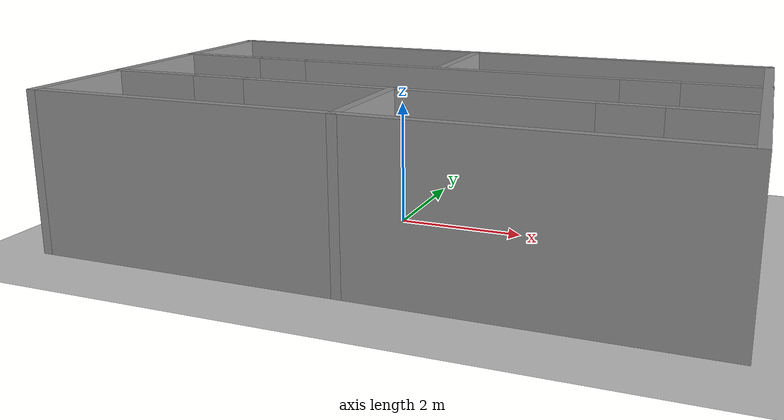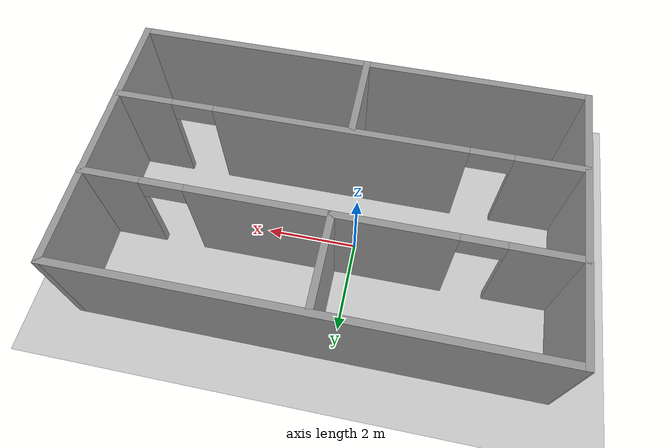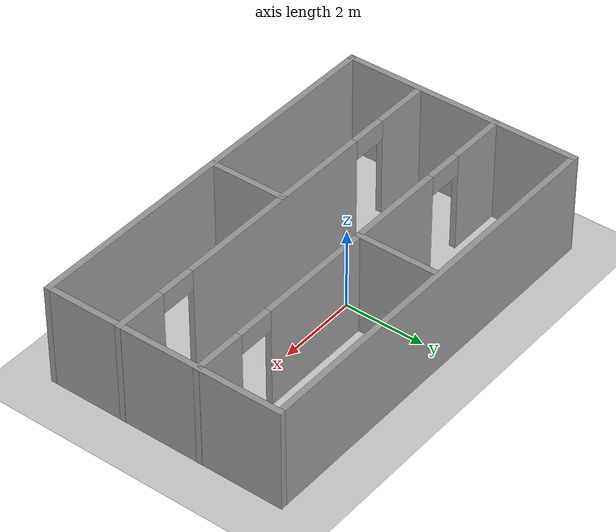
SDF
<sdf version="1.6">
 <world name="default">
  <light name="sun" type="directional">
   <pose>0 0 10 0 -0 0</pose>
   <diffuse>0.8 0.8 0.8 1</diffuse>
   <specular>0.2 0.2 0.2 1</specular>
   <attenuation>
    <range>1000</range>
    <constant>0.9</constant>
    <linear>0.01</linear>
    <quadratic>0.001</quadratic>
   </attenuation>
   <direction>-0.5 0.1 -0.9</direction>
  </light>
  <model name="ground_plane">
   <static>1</static>
   <link name="link">
    <collision name="collision">
     <geometry><plane><normal>0 0 1</normal><size>100 100</size></plane></geometry>
     <surface><friction><ode><mu>100</mu><mu2>50</mu2></ode></friction></surface>
    </collision>
    <visual name="visual">
     <cast_shadows>0</cast_shadows>
     <geometry><plane><normal>0 0 1</normal><size>100 100</size></plane></geometry>
     <material>
      <script><uri>file://media/materials/scripts/gazebo.material</uri><name>Gazebo/Grey</name></script>
     </material>
    </visual>
   </link>
  </model>
  <gravity>0 0 -9.8</gravity>
  <magnetic_field>6e-06 2.3e-05 -4.2e-05</magnetic_field>
  <atmosphere type="adiabatic"/>
  <physics name="default_physics" default="0" type="ode">
   <max_step_size>0.001</max_step_size>
   <real_time_factor>1</real_time_factor>
   <real_time_update_rate>1000</real_time_update_rate>
  </physics>
  <scene><ambient>0.4 0.4 0.4 1</ambient><background>0.7 0.7 0.7 1</background><shadows>1</shadows></scene>
  <audio><device>default</device></audio>
  <spherical_coordinates>
   <surface_model>EARTH_WGS84</surface_model>
   <latitude_deg>0</latitude_deg>
   <longitude_deg>0</longitude_deg>
   <elevation>0</elevation>
   <heading_deg>0</heading_deg>
  </spherical_coordinates>
  <model name="Map1">
   <pose>0.544278 -0.310408 0 0 -0 0</pose>
   <link name="Wall_13">
    <pose>0.015929 0.929443 0 0 -0 0</pose>
    <visual name="Wall_13_Visual_0">
     <pose>-4.2505 0 1.25 0 -0 0</pose>
     <geometry><box><size>1.49901 0.15 2.5</size></box></geometry>
     <material>
      <script><uri>file://media/materials/scripts/gazebo.material</uri><name>Gazebo/Grey</name></script>
      <ambient>1 1 1 1</ambient>
     </material>
    </visual>
    <collision name="Wall_13_Collision_0">
     <geometry><box><size>1.49901 0.15 2.5</size></box></geometry>
     <pose>-4.2505 0 1.25 0 -0 0</pose>
    </collision>
    <visual name="Wall_13_Visual_1">
     <pose>0.097219 0 1.25 0 -0 0</pose>
     <geometry><box><size>5.39642 0.15 2.5</size></box></geometry>
     <material>
      <script><uri>file://media/materials/scripts/gazebo.material</uri><name>Gazebo/Grey</name></script>
      <ambient>1 1 1 1</ambient>
     </material>
    </visual>
    <collision name="Wall_13_Collision_1">
     <geometry><box><size>5.39642 0.15 2.5</size></box></geometry>
     <pose>0.097219 0 1.25 0 -0 0</pose>
    </collision>
    <visual name="Wall_13_Visual_2">
     <pose>4.34771 0 1.25 0 -0 0</pose>
     <geometry><box><size>1.30457 0.15 2.5</size></box></geometry>
     <material>
      <script><uri>file://media/materials/scripts/gazebo.material</uri><name>Gazebo/Grey</name></script>
      <ambient>1 1 1 1</ambient>
     </material>
    </visual>
    <collision name="Wall_13_Collision_2">
     <geometry><box><size>1.30457 0.15 2.5</size></box></geometry>
     <pose>4.34771 0 1.25 0 -0 0</pose>
    </collision>
    <visual name="Wall_13_Visual_3">
     <pose>-3.05099 0 2.25 0 -0 0</pose>
     <geometry><box><size>0.9 0.15 0.5</size></box></geometry>
     <material>
      <script><uri>file://media/materials/scripts/gazebo.material</uri><name>Gazebo/Grey</name></script>
      <ambient>1 1 1 1</ambient>
     </material>
    </visual>
    <collision name="Wall_13_Collision_3">
     <geometry><box><size>0.9 0.15 0.5</size></box></geometry>
     <pose>-3.05099 0 2.25 0 -0 0</pose>
    </collision>
    <visual name="Wall_13_Visual_4">
     <pose>3.24543 0 2.25 0 -0 0</pose>
     <geometry><box><size>0.9 0.15 0.5</size></box></geometry>
     <material>
      <script><uri>file://media/materials/scripts/gazebo.material</uri><name>Gazebo/Grey</name></script>
      <ambient>1 1 1 1</ambient>
     </material>
    </visual>
    <collision name="Wall_13_Collision_4">
     <geometry><box><size>0.9 0.15 0.5</size></box></geometry>
     <pose>3.24543 0 2.25 0 -0 0</pose>
    </collision>
   </link>
   <link name="Wall_15">
    <pose>0.015929 -1.06306 0 0 -0 0</pose>
    <visual name="Wall_15_Visual_0">
     <pose>-4.2505 0 1.25 0 -0 0</pose>
     <geometry><box><size>1.49901 0.15 2.5</size></box></geometry>
     <material>
      <script><uri>file://media/materials/scripts/gazebo.material</uri><name>Gazebo/Grey</name></script>
      <ambient>1 1 1 1</ambient>
     </material>
    </visual>
    <collision name="Wall_15_Collision_0">
     <geometry><box><size>1.49901 0.15 2.5</size></box></geometry>
     <pose>-4.2505 0 1.25 0 -0 0</pose>
    </collision>
    <visual name="Wall_15_Visual_1">
     <pose>0.097219 0 1.25 0 -0 0</pose>
     <geometry><box><size>5.39642 0.15 2.5</size></box></geometry>
     <material>
      <script><uri>file://media/materials/scripts/gazebo.material</uri><name>Gazebo/Grey</name></script>
      <ambient>1 1 1 1</ambient>
     </material>
    </visual>
    <collision name="Wall_15_Collision_1">
     <geometry><box><size>5.39642 0.15 2.5</size></box></geometry>
     <pose>0.097219 0 1.25 0 -0 0</pose>
    </collision>
    <visual name="Wall_15_Visual_2">
     <pose>4.34771 0 1.25 0 -0 0</pose>
     <geometry><box><size>1.30457 0.15 2.5</size></box></geometry>
     <material>
      <script><uri>file://media/materials/scripts/gazebo.material</uri><name>Gazebo/Grey</name></script>
      <ambient>1 1 1 1</ambient>
     </material>
    </visual>
    <collision name="Wall_15_Collision_2">
     <geometry><box><size>1.30457 0.15 2.5</size></box></geometry>
     <pose>4.34771 0 1.25 0 -0 0</pose>
    </collision>
    <visual name="Wall_15_Visual_3">
     <pose>-3.05099 0 2.25 0 -0 0</pose>
     <geometry><box><size>0.9 0.15 0.5</size></box></geometry>
     <material>
      <script><uri>file://media/materials/scripts/gazebo.material</uri><name>Gazebo/Grey</name></script>
      <ambient>1 1 1 1</ambient>
     </material>
    </visual>
    <collision name="Wall_15_Collision_3">
     <geometry><box><size>0.9 0.15 0.5</size></box></geometry>
     <pose>-3.05099 0 2.25 0 -0 0</pose>
    </collision>
    <visual name="Wall_15_Visual_4">
     <pose>3.24543 0 2.25 0 -0 0</pose>
     <geometry><box><size>0.9 0.15 0.5</size></box></geometry>
     <material>
      <script><uri>file://media/materials/scripts/gazebo.material</uri><name>Gazebo/Grey</name></script>
      <ambient>1 1 1 1</ambient>
     </material>
    </visual>
    <collision name="Wall_15_Collision_4">
     <geometry><box><size>0.9 0.15 0.5</size></box></geometry>
     <pose>3.24543 0 2.25 0 -0 0</pose>
    </collision>
   </link>
   <link name="Wall_17">
    <collision name="Wall_17_Collision">
     <geometry><box><size>2 0.15 2.5</size></box></geometry>
     <pose>0 0 1.25 0 -0 0</pose>
    </collision>
    <visual name="Wall_17_Visual">
     <pose>0 0 1.25 0 -0 0</pose>
     <geometry><box><size>2 0.15 2.5</size></box></geometry>
     <material>
      <script><uri>file://media/materials/scripts/gazebo.material</uri><name>Gazebo/Grey</name></script>
      <ambient>1 1 1 1</ambient>
     </material>
    </visual>
    <pose>-0.140008 1.8728 0 0 -0 1.5708</pose>
   </link>
   <link name="Wall_19">
    <collision name="Wall_19_Collision">
     <geometry><box><size>2 0.15 2.5</size></box></geometry>
     <pose>0 0 1.25 0 -0 0</pose>
    </collision>
    <visual name="Wall_19_Visual">
     <pose>0 0 1.25 0 -0 0</pose>
     <geometry><box><size>2 0.15 2.5</size></box></geometry>
     <material>
      <script><uri>file://media/materials/scripts/gazebo.material</uri><name>Gazebo/Grey</name></script>
      <ambient>1 1 1 1</ambient>
     </material>
    </visual>
    <pose>-0.150555 -2.00031 0 0 0 -1.5708</pose>
   </link>
   <link name="Wall_2">
    <collision name="Wall_2_Collision">
     <geometry><box><size>6 0.15 2.5</size></box></geometry>
     <pose>0 0 1.25 0 -0 0</pose>
    </collision>
    <visual name="Wall_2_Visual">
     <pose>0 0 1.25 0 -0 0</pose>
     <geometry><box><size>6 0.15 2.5</size></box></geometry>
     <material>
      <script><uri>file://media/materials/scripts/gazebo.material</uri><name>Gazebo/Grey</name></script>
      <ambient>1 1 1 1</ambient>
     </material>
    </visual>
    <pose>-4.94093 0.000309 0 0 0 -1.5708</pose>
   </link>
   <link name="Wall_6">
    <collision name="Wall_6_Collision">
     <geometry><box><size>10 0.15 2.5</size></box></geometry>
     <pose>0 0 1.25 0 -0 0</pose>
    </collision>
    <visual name="Wall_6_Visual">
     <pose>0 0 1.25 0 -0 0</pose>
     <geometry><box><size>10 0.15 2.5</size></box></geometry>
     <material>
      <script><uri>file://media/materials/scripts/gazebo.material</uri><name>Gazebo/Grey</name></script>
      <ambient>1 1 1 1</ambient>
     </material>
    </visual>
    <pose>0.010671 2.92531 0 0 -0 3.14159</pose>
   </link>
   <link name="Wall_8">
    <collision name="Wall_8_Collision">
     <geometry><box><size>6 0.15 2.5</size></box></geometry>
     <pose>0 0 1.25 0 -0 0</pose>
    </collision>
    <visual name="Wall_8_Visual">
     <pose>0 0 1.25 0 -0 0</pose>
     <geometry><box><size>6 0.15 2.5</size></box></geometry>
     <material>
      <script><uri>file://media/materials/scripts/gazebo.material</uri><name>Gazebo/Grey</name></script>
      <ambient>1 1 1 1</ambient>
     </material>
    </visual>
    <pose>4.93567 0.000309 0 0 0 -1.5708</pose>
   </link>
   <link name="Wall_9">
    <collision name="Wall_9_Collision">
     <geometry><box><size>10 0.15 2.5</size></box></geometry>
     <pose>0 0 1.25 0 -0 0</pose>
    </collision>
    <visual name="Wall_9_Visual">
     <pose>0 0 1.25 0 -0 0</pose>
     <geometry><box><size>10 0.15 2.5</size></box></geometry>
     <material>
      <script><uri>file://media/materials/scripts/gazebo.material</uri><name>Gazebo/Grey</name></script>
      <ambient>1 1 1 1</ambient>
     </material>
    </visual>
    <pose>0.010671 -2.92469 0 0 -0 3.14159</pose>
   </link>
   <static>1</static>
  </model>
 </world>
</sdf>
